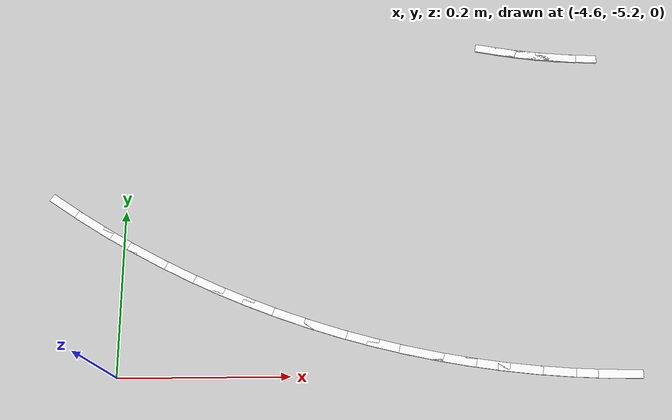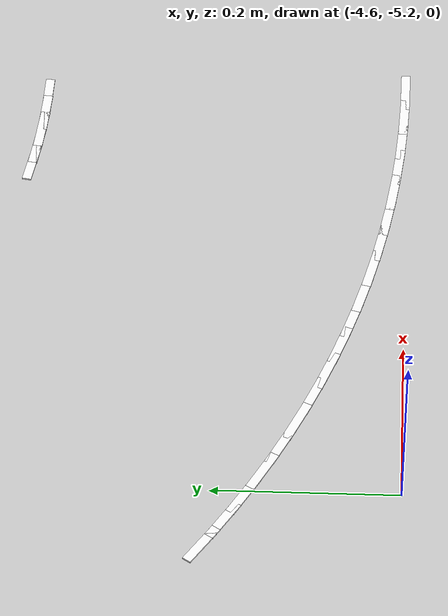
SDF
<sdf version="1.7">
 <world name="default">
  <model name="ground_plane">
   <static>1</static>
   <link name="link">
    <collision name="collision">
     <geometry><plane><normal>0 0 1</normal><size>100 100</size></plane></geometry>
     <surface>
      <contact><collide_bitmask>65535</collide_bitmask></contact>
      <friction><ode><mu>100</mu><mu2>50</mu2></ode></friction>
     </surface>
    </collision>
    <visual name="visual">
     <cast_shadows>0</cast_shadows>
     <geometry><plane><normal>0 0 1</normal><size>100 100</size></plane></geometry>
     <material>
      <script><uri>file://media/materials/scripts/gazebo.material</uri><name>Gazebo/Grey</name></script>
     </material>
    </visual>
   </link>
  </model>
  <model name="lane_line_right_380">
   <static>1</static>
   <link name="link">
    <pose>0 0 -0.004 0 -0 0</pose>
    <visual name="visual">
     <geometry><box><size>0.0521 0.01 0.01</size></box></geometry>
     <material><ambient>1 1 1 1</ambient><diffuse>1 1 1 1</diffuse></material>
    </visual>
    <collision name="collision"><geometry><box><size>0.0521 0.01 0.01</size></box></geometry></collision>
   </link>
   <pose>-4.67061 -4.99498 0 0 0 -0.593056</pose>
  </model>
  <model name="lane_line_right_381">
   <static>1</static>
   <link name="link">
    <pose>0 0 -0.004 0 -0 0</pose>
    <visual name="visual">
     <geometry><box><size>0.0521 0.01 0.01</size></box></geometry>
     <material><ambient>1 1 1 1</ambient><diffuse>1 1 1 1</diffuse></material>
    </visual>
    <collision name="collision"><geometry><box><size>0.0521 0.01 0.01</size></box></geometry></collision>
   </link>
   <pose>-4.63837 -5.01596 0 0 0 -0.560999</pose>
  </model>
  <model name="lane_line_right_382">
   <static>1</static>
   <link name="link">
    <pose>0 0 -0.004 0 -0 0</pose>
    <visual name="visual">
     <geometry><box><size>0.0521 0.01 0.01</size></box></geometry>
     <material><ambient>1 1 1 1</ambient><diffuse>1 1 1 1</diffuse></material>
    </visual>
    <collision name="collision"><geometry><box><size>0.0521 0.01 0.01</size></box></geometry></collision>
   </link>
   <pose>-4.60548 -5.0359 0 0 0 -0.528942</pose>
  </model>
  <model name="lane_line_right_383">
   <static>1</static>
   <link name="link">
    <pose>0 0 -0.004 0 -0 0</pose>
    <visual name="visual">
     <geometry><box><size>0.0521 0.01 0.01</size></box></geometry>
     <material><ambient>1 1 1 1</ambient><diffuse>1 1 1 1</diffuse></material>
    </visual>
    <collision name="collision"><geometry><box><size>0.0521 0.01 0.01</size></box></geometry></collision>
   </link>
   <pose>-4.57197 -5.05477 0 0 0 -0.496885</pose>
  </model>
  <model name="lane_line_right_384">
   <static>1</static>
   <link name="link">
    <pose>0 0 -0.004 0 -0 0</pose>
    <visual name="visual">
     <geometry><box><size>0.0521 0.01 0.01</size></box></geometry>
     <material><ambient>1 1 1 1</ambient><diffuse>1 1 1 1</diffuse></material>
    </visual>
    <collision name="collision"><geometry><box><size>0.0521 0.01 0.01</size></box></geometry></collision>
   </link>
   <pose>-4.53786 -5.07256 0 0 0 -0.464827</pose>
  </model>
  <model name="lane_line_right_385">
   <static>1</static>
   <link name="link">
    <pose>0 0 -0.004 0 -0 0</pose>
    <visual name="visual">
     <geometry><box><size>0.0521 0.01 0.01</size></box></geometry>
     <material><ambient>1 1 1 1</ambient><diffuse>1 1 1 1</diffuse></material>
    </visual>
    <collision name="collision"><geometry><box><size>0.0521 0.01 0.01</size></box></geometry></collision>
   </link>
   <pose>-4.50321 -5.08925 0 0 0 -0.43277</pose>
  </model>
  <model name="lane_line_right_386">
   <static>1</static>
   <link name="link">
    <pose>0 0 -0.004 0 -0 0</pose>
    <visual name="visual">
     <geometry><box><size>0.0521 0.01 0.01</size></box></geometry>
     <material><ambient>1 1 1 1</ambient><diffuse>1 1 1 1</diffuse></material>
    </visual>
    <collision name="collision"><geometry><box><size>0.0521 0.01 0.01</size></box></geometry></collision>
   </link>
   <pose>-4.46804 -5.10482 0 0 0 -0.400713</pose>
  </model>
  <model name="lane_line_right_387">
   <static>1</static>
   <link name="link">
    <pose>0 0 -0.004 0 -0 0</pose>
    <visual name="visual">
     <geometry><box><size>0.0521 0.01 0.01</size></box></geometry>
     <material><ambient>1 1 1 1</ambient><diffuse>1 1 1 1</diffuse></material>
    </visual>
    <collision name="collision"><geometry><box><size>0.0521 0.01 0.01</size></box></geometry></collision>
   </link>
   <pose>-4.43239 -5.11926 0 0 0 -0.368656</pose>
  </model>
  <model name="lane_line_right_388">
   <static>1</static>
   <link name="link">
    <pose>0 0 -0.004 0 -0 0</pose>
    <visual name="visual">
     <geometry><box><size>0.0521 0.01 0.01</size></box></geometry>
     <material><ambient>1 1 1 1</ambient><diffuse>1 1 1 1</diffuse></material>
    </visual>
    <collision name="collision"><geometry><box><size>0.0521 0.01 0.01</size></box></geometry></collision>
   </link>
   <pose>-4.39629 -5.13254 0 0 0 -0.336599</pose>
  </model>
  <model name="lane_line_right_389">
   <static>1</static>
   <link name="link">
    <pose>0 0 -0.004 0 -0 0</pose>
    <visual name="visual">
     <geometry><box><size>0.0521 0.01 0.01</size></box></geometry>
     <material><ambient>1 1 1 1</ambient><diffuse>1 1 1 1</diffuse></material>
    </visual>
    <collision name="collision"><geometry><box><size>0.0521 0.01 0.01</size></box></geometry></collision>
   </link>
   <pose>-4.35979 -5.14466 0 0 0 -0.304542</pose>
  </model>
  <model name="lane_line_right_390">
   <static>1</static>
   <link name="link">
    <pose>0 0 -0.004 0 -0 0</pose>
    <visual name="visual">
     <geometry><box><size>0.0521 0.01 0.01</size></box></geometry>
     <material><ambient>1 1 1 1</ambient><diffuse>1 1 1 1</diffuse></material>
    </visual>
    <collision name="collision"><geometry><box><size>0.0521 0.01 0.01</size></box></geometry></collision>
   </link>
   <pose>-4.32292 -5.1556 0 0 0 -0.272485</pose>
  </model>
  <model name="lane_line_right_391">
   <static>1</static>
   <link name="link">
    <pose>0 0 -0.004 0 -0 0</pose>
    <visual name="visual">
     <geometry><box><size>0.0521 0.01 0.01</size></box></geometry>
     <material><ambient>1 1 1 1</ambient><diffuse>1 1 1 1</diffuse></material>
    </visual>
    <collision name="collision"><geometry><box><size>0.0521 0.01 0.01</size></box></geometry></collision>
   </link>
   <pose>-4.28571 -5.16536 0 0 0 -0.240428</pose>
  </model>
  <model name="lane_line_right_392">
   <static>1</static>
   <link name="link">
    <pose>0 0 -0.004 0 -0 0</pose>
    <visual name="visual">
     <geometry><box><size>0.0521 0.01 0.01</size></box></geometry>
     <material><ambient>1 1 1 1</ambient><diffuse>1 1 1 1</diffuse></material>
    </visual>
    <collision name="collision"><geometry><box><size>0.0521 0.01 0.01</size></box></geometry></collision>
   </link>
   <pose>-4.24821 -5.17392 0 0 0 -0.208371</pose>
  </model>
  <model name="lane_line_left_393">
   <static>1</static>
   <link name="link">
    <pose>0 0 -0.004 0 -0 0</pose>
    <visual name="visual">
     <geometry><box><size>0.0521 0.01 0.01</size></box></geometry>
     <material><ambient>1 1 1 1</ambient><diffuse>1 1 1 1</diffuse></material>
    </visual>
    <collision name="collision"><geometry><box><size>0.0521 0.01 0.01</size></box></geometry></collision>
   </link>
   <pose>-4.1403 -4.78747 0 0 0 -0.176314</pose>
  </model>
  <model name="lane_line_right_393">
   <static>1</static>
   <link name="link">
    <pose>0 0 -0.004 0 -0 0</pose>
    <visual name="visual">
     <geometry><box><size>0.0521 0.01 0.01</size></box></geometry>
     <material><ambient>1 1 1 1</ambient><diffuse>1 1 1 1</diffuse></material>
    </visual>
    <collision name="collision"><geometry><box><size>0.0521 0.01 0.01</size></box></geometry></collision>
   </link>
   <pose>-4.21046 -5.18127 0 0 0 -0.176314</pose>
  </model>
  <model name="lane_line_left_394">
   <static>1</static>
   <link name="link">
    <pose>0 0 -0.004 0 -0 0</pose>
    <visual name="visual">
     <geometry><box><size>0.0521 0.01 0.01</size></box></geometry>
     <material><ambient>1 1 1 1</ambient><diffuse>1 1 1 1</diffuse></material>
    </visual>
    <collision name="collision"><geometry><box><size>0.0521 0.01 0.01</size></box></geometry></collision>
   </link>
   <pose>-4.11499 -4.79156 0 0 0 -0.144257</pose>
  </model>
  <model name="lane_line_right_394">
   <static>1</static>
   <link name="link">
    <pose>0 0 -0.004 0 -0 0</pose>
    <visual name="visual">
     <geometry><box><size>0.0521 0.01 0.01</size></box></geometry>
     <material><ambient>1 1 1 1</ambient><diffuse>1 1 1 1</diffuse></material>
    </visual>
    <collision name="collision"><geometry><box><size>0.0521 0.01 0.01</size></box></geometry></collision>
   </link>
   <pose>-4.17249 -5.18741 0 0 0 -0.144257</pose>
  </model>
  <model name="lane_line_left_395">
   <static>1</static>
   <link name="link">
    <pose>0 0 -0.004 0 -0 0</pose>
    <visual name="visual">
     <geometry><box><size>0.0521 0.01 0.01</size></box></geometry>
     <material><ambient>1 1 1 1</ambient><diffuse>1 1 1 1</diffuse></material>
    </visual>
    <collision name="collision"><geometry><box><size>0.0521 0.01 0.01</size></box></geometry></collision>
   </link>
   <pose>-4.08956 -4.79484 0 0 0 -0.1122</pose>
  </model>
  <model name="lane_line_right_395">
   <static>1</static>
   <link name="link">
    <pose>0 0 -0.004 0 -0 0</pose>
    <visual name="visual">
     <geometry><box><size>0.0521 0.01 0.01</size></box></geometry>
     <material><ambient>1 1 1 1</ambient><diffuse>1 1 1 1</diffuse></material>
    </visual>
    <collision name="collision"><geometry><box><size>0.0521 0.01 0.01</size></box></geometry></collision>
   </link>
   <pose>-4.13434 -5.19233 0 0 0 -0.1122</pose>
  </model>
  <model name="lane_line_left_396">
   <static>1</static>
   <link name="link">
    <pose>0 0 -0.004 0 -0 0</pose>
    <visual name="visual">
     <geometry><box><size>0.0521 0.01 0.01</size></box></geometry>
     <material><ambient>1 1 1 1</ambient><diffuse>1 1 1 1</diffuse></material>
    </visual>
    <collision name="collision"><geometry><box><size>0.0521 0.01 0.01</size></box></geometry></collision>
   </link>
   <pose>-4.06404 -4.7973 0 0 0 -0.080143</pose>
  </model>
  <model name="lane_line_right_396">
   <static>1</static>
   <link name="link">
    <pose>0 0 -0.004 0 -0 0</pose>
    <visual name="visual">
     <geometry><box><size>0.0521 0.01 0.01</size></box></geometry>
     <material><ambient>1 1 1 1</ambient><diffuse>1 1 1 1</diffuse></material>
    </visual>
    <collision name="collision"><geometry><box><size>0.0521 0.01 0.01</size></box></geometry></collision>
   </link>
   <pose>-4.09606 -5.19602 0 0 0 -0.080143</pose>
  </model>
  <model name="lane_line_left_397">
   <static>1</static>
   <link name="link">
    <pose>0 0 -0.004 0 -0 0</pose>
    <visual name="visual">
     <geometry><box><size>0.0521 0.01 0.01</size></box></geometry>
     <material><ambient>1 1 1 1</ambient><diffuse>1 1 1 1</diffuse></material>
    </visual>
    <collision name="collision"><geometry><box><size>0.0521 0.01 0.01</size></box></geometry></collision>
   </link>
   <pose>-4.03845 -4.79895 0 0 0 -0.048086</pose>
  </model>
  <model name="lane_line_right_397">
   <static>1</static>
   <link name="link">
    <pose>0 0 -0.004 0 -0 0</pose>
    <visual name="visual">
     <geometry><box><size>0.0521 0.01 0.01</size></box></geometry>
     <material><ambient>1 1 1 1</ambient><diffuse>1 1 1 1</diffuse></material>
    </visual>
    <collision name="collision"><geometry><box><size>0.0521 0.01 0.01</size></box></geometry></collision>
   </link>
   <pose>-4.05767 -5.19848 0 0 0 -0.048086</pose>
  </model>
  <model name="lane_line_right_398">
   <static>1</static>
   <link name="link">
    <pose>0 0 -0.004 0 -0 0</pose>
    <visual name="visual">
     <geometry><box><size>0.0521 0.01 0.01</size></box></geometry>
     <material><ambient>1 1 1 1</ambient><diffuse>1 1 1 1</diffuse></material>
    </visual>
    <collision name="collision"><geometry><box><size>0.0521 0.01 0.01</size></box></geometry></collision>
   </link>
   <pose>-4.01923 -5.19972 0 0 0 -0.016029</pose>
  </model>
 </world>
</sdf>
